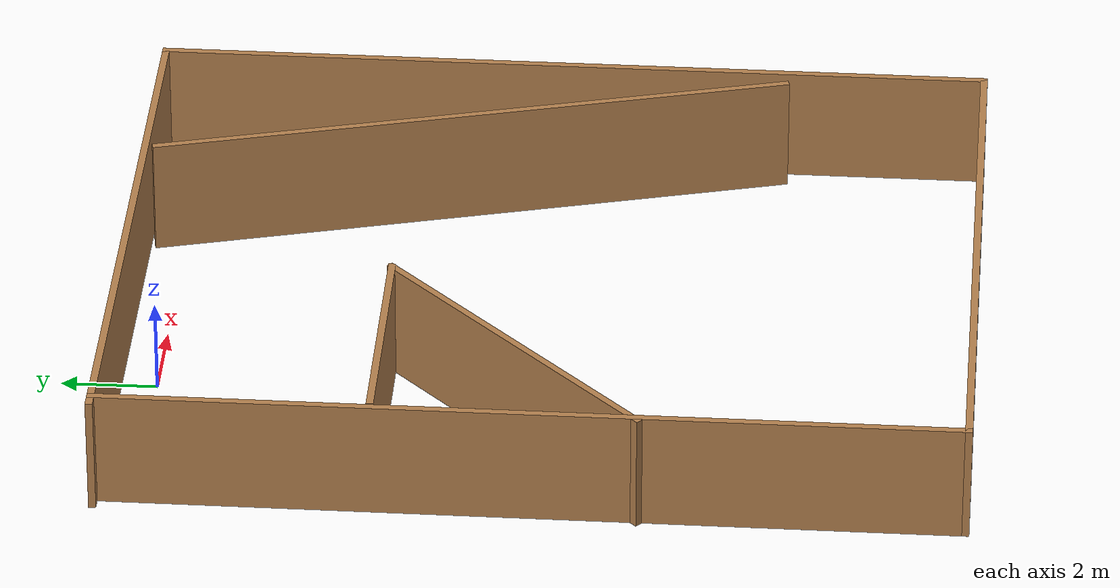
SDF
<?xml version='1.0'?>
<sdf version='1.7'>
  <model name='room3'>
    <pose>2.4885 -7.98522 0 0 -0 0</pose>
    <link name='Wall_0'>
      <collision name='Wall_0_Collision'>
        <geometry>
          <box>
            <size>14 0.15 2.5</size>
          </box>
        </geometry>
        <pose>0 0 1.25 0 -0 0</pose>
      </collision>
      <visual name='Wall_0_Visual'>
        <pose>0 0 1.25 0 -0 0</pose>
        <geometry>
          <box>
            <size>14 0.15 2.5</size>
          </box>
        </geometry>
        <material>
          <script>
            <uri>file://media/materials/scripts/gazebo.material</uri>
            <name>Gazebo/Wood</name>
          </script>
          <ambient>1 1 1 1</ambient>
        </material>
        <meta>
          <layer>0</layer>
        </meta>
      </visual>
      <pose>-0 8.8 0 0 -0 0</pose>
    </link>
    <link name='Wall_1'>
      <collision name='Wall_1_Collision'>
        <geometry>
          <box>
            <size>17.75 0.15 2.5</size>
          </box>
        </geometry>
        <pose>0 0 1.25 0 -0 0</pose>
      </collision>
      <visual name='Wall_1_Visual'>
        <pose>0 0 1.25 0 -0 0</pose>
        <geometry>
          <box>
            <size>17.75 0.15 2.5</size>
          </box>
        </geometry>
        <material>
          <script>
            <uri>file://media/materials/scripts/gazebo.material</uri>
            <name>Gazebo/Wood</name>
          </script>
          <ambient>1 1 1 1</ambient>
        </material>
        <meta>
          <layer>0</layer>
        </meta>
      </visual>
      <pose>6.925 0 0 0 -0 -1.5708</pose>
    </link>
    <link name='Wall_2'>
      <collision name='Wall_2_Collision'>
        <geometry>
          <box>
            <size>13.75 0.15 2.5</size>
          </box>
        </geometry>
        <pose>0 0 1.25 0 -0 0</pose>
      </collision>
      <visual name='Wall_2_Visual'>
        <pose>0 0 1.25 0 -0 0</pose>
        <geometry>
          <box>
            <size>13.75 0.15 2.5</size>
          </box>
        </geometry>
        <material>
          <script>
            <uri>file://media/materials/scripts/gazebo.material</uri>
            <name>Gazebo/Wood</name>
          </script>
          <ambient>1 1 1 1</ambient>
        </material>
        <meta>
          <layer>0</layer>
        </meta>
      </visual>
      <pose>0.125 -8.8 0 0 -0 3.14159</pose>
    </link>
    <link name='Wall_3'>
      <collision name='Wall_3_Collision'>
        <geometry>
          <box>
            <size>17.75 0.15 2.5</size>
          </box>
        </geometry>
        <pose>0 0 1.25 0 -0 0</pose>
      </collision>
      <visual name='Wall_3_Visual'>
        <pose>0 0 1.25 0 -0 0</pose>
        <geometry>
          <box>
            <size>17.75 0.15 2.5</size>
          </box>
        </geometry>
        <material>
          <script>
            <uri>file://media/materials/scripts/gazebo.material</uri>
            <name>Gazebo/Wood</name>
          </script>
          <ambient>1 1 1 1</ambient>
        </material>
        <meta>
          <layer>0</layer>
        </meta>
      </visual>
      <pose>-6.675 0 0 0 -0 1.5708</pose>
    </link>
    <link name='Wall_5'>
      <collision name='Wall_5_Collision'>
        <geometry>
          <box>
            <size>5.25 0.15 2.5</size>
          </box>
        </geometry>
        <pose>0 0 1.25 0 -0 0</pose>
      </collision>
      <visual name='Wall_5_Visual'>
        <pose>0 0 1.25 0 -0 0</pose>
        <geometry>
          <box>
            <size>5.25 0.15 2.5</size>
          </box>
        </geometry>
        <material>
          <script>
            <uri>file://media/materials/scripts/gazebo.material</uri>
            <name>Gazebo/Wood</name>
          </script>
          <ambient>1 1 1 1</ambient>
        </material>
        <meta>
          <layer>0</layer>
        </meta>
      </visual>
      <pose>-3.94425 3.19256 0 0 -0 0</pose>
    </link>
    <link name='Wall_6'>
      <collision name='Wall_6_Collision'>
        <geometry>
          <box>
            <size>7.75 0.15 2.5</size>
          </box>
        </geometry>
        <pose>0 0 1.25 0 -0 0</pose>
      </collision>
      <visual name='Wall_6_Visual'>
        <pose>0 0 1.25 0 -0 0</pose>
        <geometry>
          <box>
            <size>7.75 0.15 2.5</size>
          </box>
        </geometry>
        <material>
          <script>
            <uri>file://media/materials/scripts/gazebo.material</uri>
            <name>Gazebo/Wood</name>
          </script>
          <ambient>1 1 1 1</ambient>
        </material>
        <meta>
          <layer>0</layer>
        </meta>
      </visual>
      <pose>-4.08126 0.505555 0 0 -0 -2.35619</pose>
    </link>
    <link name='Wall_8'>
      <collision name='Wall_8_Collision'>
        <geometry>
          <box>
            <size>13.75 0.15 2.5</size>
          </box>
        </geometry>
        <pose>0 0 1.25 0 -0 0</pose>
      </collision>
      <visual name='Wall_8_Visual'>
        <pose>0 0 1.25 0 -0 0</pose>
        <geometry>
          <box>
            <size>13.75 0.15 2.5</size>
          </box>
        </geometry>
        <material>
          <script>
            <uri>file://media/materials/scripts/gazebo.material</uri>
            <name>Gazebo/Wood</name>
          </script>
          <ambient>1 1 1 1</ambient>
        </material>
        <meta>
          <layer>0</layer>
        </meta>
      </visual>
      <pose>4.73563 2.0049 0 0 -0 -1.309</pose>
    </link>
    <static>1</static>
  </model>
</sdf>
